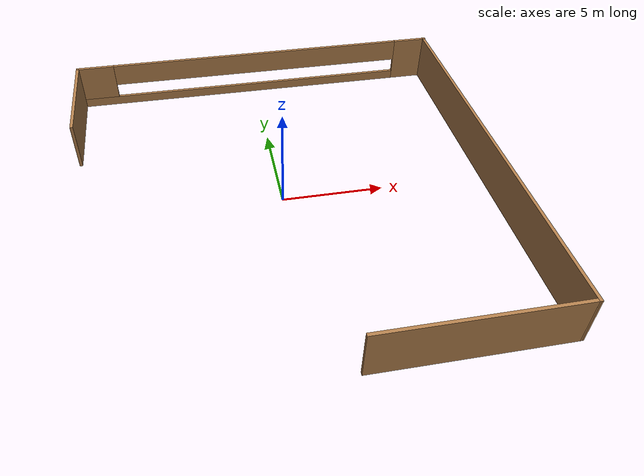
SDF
<?xml version='1.0'?>
<sdf version='1.6'>
  <model name='newwall'>
    <pose frame=''>0.164469 -0.062058 0 0 -0 0</pose>
    <link name='Wall_3'>
      <collision name='Wall_3_Collision'>
        <geometry>
          <box>
            <size>9 0.15 2.5</size>
          </box>
        </geometry>
        <pose frame=''>0 0 1.25 0 -0 0</pose>
      </collision>
      <visual name='Wall_3_Visual'>
        <pose frame=''>0 0 1.25 0 -0 0</pose>
        <geometry>
          <box>
            <size>9 0.15 2.5</size>
          </box>
        </geometry>
        <material>
          <script>
            <uri>file://media/materials/scripts/gazebo.material</uri>
            <name>Gazebo/Wood</name>
          </script>
          <ambient>1 1 1 1</ambient>
        </material>
        <meta>
          <layer>0</layer>
        </meta>
      </visual>
      <pose frame=''>5.66053 -9.81794 0 0 -0 0</pose>
    </link>
    <link name='Wall_4'>
      <collision name='Wall_4_Collision'>
        <geometry>
          <box>
            <size>19.7853 0.15 2.5</size>
          </box>
        </geometry>
        <pose frame=''>0 0 1.25 0 -0 0</pose>
      </collision>
      <visual name='Wall_4_Visual'>
        <pose frame=''>0 0 1.25 0 -0 0</pose>
        <geometry>
          <box>
            <size>19.7853 0.15 2.5</size>
          </box>
        </geometry>
        <material>
          <script>
            <uri>file://media/materials/scripts/gazebo.material</uri>
            <name>Gazebo/Wood</name>
          </script>
          <ambient>1 1 1 1</ambient>
        </material>
        <meta>
          <layer>0</layer>
        </meta>
      </visual>
      <pose frame=''>10.0504 -0.000352 0 0 -0 1.57438</pose>
    </link>
    <link name='Wall_5'>
      <pose frame=''>0.000352 9.81724 0 0 -0 3.14159</pose>
      <visual name='Wall_5_Visual_0'>
        <pose frame=''>-9.1697 0 1.25 0 -0 0</pose>
        <geometry>
          <box>
            <size>1.9106 0.15 2.5</size>
          </box>
        </geometry>
        <material>
          <script>
            <uri>file://media/materials/scripts/gazebo.material</uri>
            <name>Gazebo/Wood</name>
          </script>
          <ambient>1 1 1 1</ambient>
        </material>
        <meta>
          <layer>0</layer>
        </meta>
      </visual>
      <collision name='Wall_5_Collision_0'>
        <geometry>
          <box>
            <size>1.9106 0.15 2.5</size>
          </box>
        </geometry>
        <pose frame=''>-9.1697 0 1.25 0 -0 0</pose>
      </collision>
      <visual name='Wall_5_Visual_1'>
        <pose frame=''>0.955299 0 0.25 0 -0 0</pose>
        <geometry>
          <box>
            <size>18.3394 0.15 0.5</size>
          </box>
        </geometry>
        <material>
          <script>
            <uri>file://media/materials/scripts/gazebo.material</uri>
            <name>Gazebo/Wood</name>
          </script>
          <ambient>1 1 1 1</ambient>
        </material>
        <meta>
          <layer>0</layer>
        </meta>
      </visual>
      <collision name='Wall_5_Collision_1'>
        <geometry>
          <box>
            <size>18.3394 0.15 0.5</size>
          </box>
        </geometry>
        <pose frame=''>0.955299 0 0.25 0 -0 0</pose>
      </collision>
      <visual name='Wall_5_Visual_2'>
        <pose frame=''>9.12254 0 1.5 0 -0 0</pose>
        <geometry>
          <box>
            <size>2.00492 0.15 2</size>
          </box>
        </geometry>
        <material>
          <script>
            <uri>file://media/materials/scripts/gazebo.material</uri>
            <name>Gazebo/Wood</name>
          </script>
          <ambient>1 1 1 1</ambient>
        </material>
        <meta>
          <layer>0</layer>
        </meta>
      </visual>
      <collision name='Wall_5_Collision_2'>
        <geometry>
          <box>
            <size>2.00492 0.15 2</size>
          </box>
        </geometry>
        <pose frame=''>9.12254 0 1.5 0 -0 0</pose>
      </collision>
      <visual name='Wall_5_Visual_3'>
        <pose frame=''>-0.04716 0 1.9 0 -0 0</pose>
        <geometry>
          <box>
            <size>16.3345 0.15 1.2</size>
          </box>
        </geometry>
        <material>
          <script>
            <uri>file://media/materials/scripts/gazebo.material</uri>
            <name>Gazebo/Wood</name>
          </script>
          <ambient>1 1 1 1</ambient>
        </material>
        <meta>
          <layer>0</layer>
        </meta>
      </visual>
      <collision name='Wall_5_Collision_3'>
        <geometry>
          <box>
            <size>16.3345 0.15 1.2</size>
          </box>
        </geometry>
        <pose frame=''>-0.04716 0 1.9 0 -0 0</pose>
      </collision>
    </link>
    <link name='Wall_6'>
      <collision name='Wall_6_Collision'>
        <geometry>
          <box>
            <size>5.53564 0.15 2.5</size>
          </box>
        </geometry>
        <pose frame=''>0 0 1.25 0 -0 0</pose>
      </collision>
      <visual name='Wall_6_Visual'>
        <pose frame=''>0 0 1.25 0 -0 0</pose>
        <geometry>
          <box>
            <size>5.53564 0.15 2.5</size>
          </box>
        </geometry>
        <material>
          <script>
            <uri>file://media/materials/scripts/gazebo.material</uri>
            <name>Gazebo/Wood</name>
          </script>
          <ambient>1 1 1 1</ambient>
        </material>
        <meta>
          <layer>0</layer>
        </meta>
      </visual>
      <pose frame=''>-10.0496 7.12465 0 0 -0 -1.55773</pose>
    </link>
    <static>1</static>
  </model>
</sdf>
